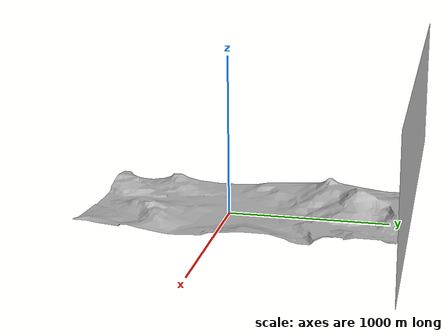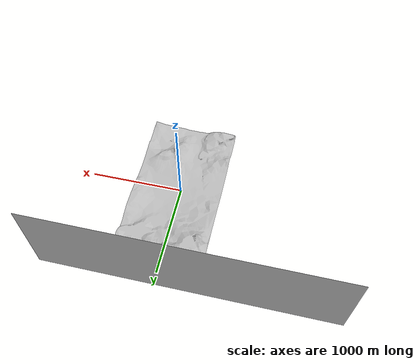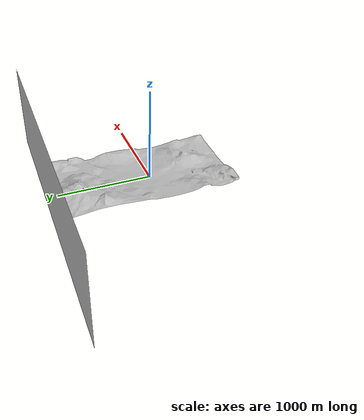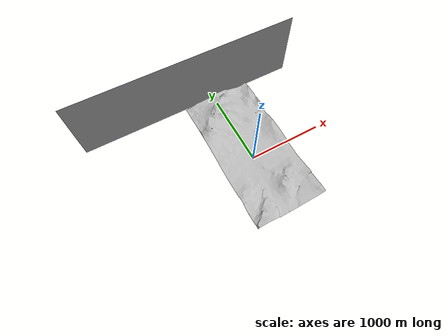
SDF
<sdf version="1.4">
  <model name="desert">
    <static>1</static>
    <link name="link">
      <collision name="colision1">
        <pose>0 0 0 0 0 0</pose>
        <geometry>
          <mesh>
            <uri>model://desert/meshes/Mountains.dae</uri>
            <scale>1 1 1</scale>
          </mesh>
        </geometry>
        <surface>
          <bounce />
          <friction>
            <ode />
          </friction>
          <contact>
            <ode />
          </contact>
        </surface>
      </collision>
      <visual name="visual1">
        <pose>0 0 0 0 0 0</pose>
        <geometry>
          <mesh>
            <uri>model://desert/meshes/Mountains.dae</uri>
            <scale>1 1 1</scale>
          </mesh>
        </geometry>
      </visual>
    </link>
  </model>
</sdf>
